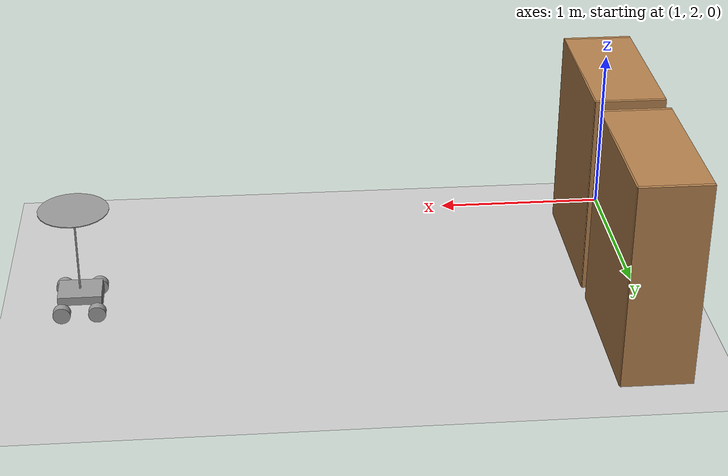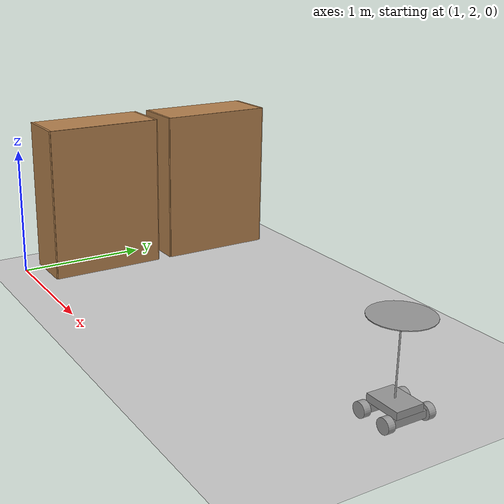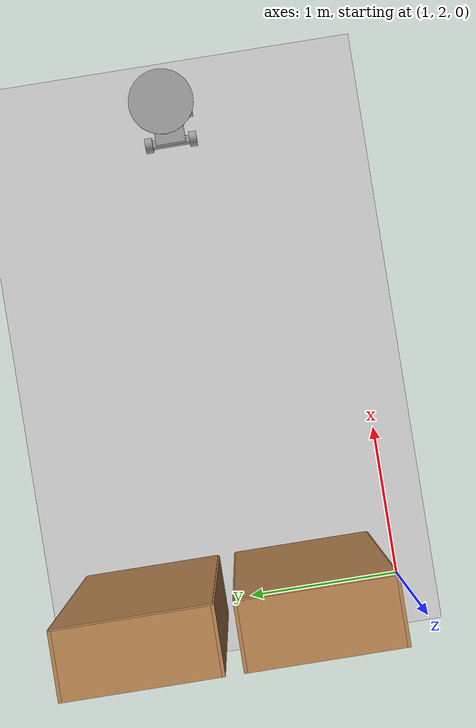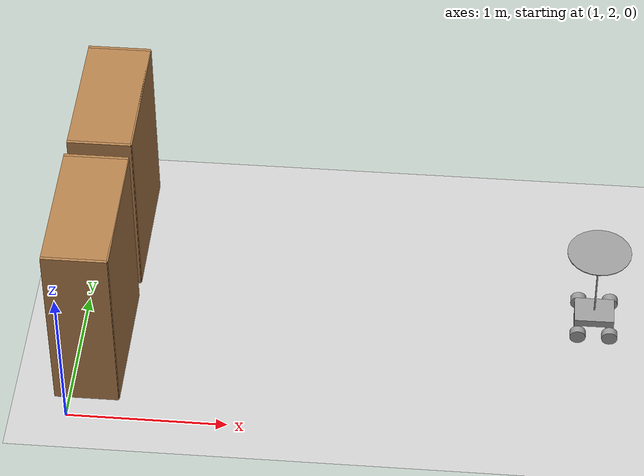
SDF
<sdf version="1.6">
 <world name="default">
  <model name="ground_plane">
   <static>1</static>
   <link name="link">
    <collision name="collision">
     <geometry><plane><normal>0 0 1</normal><size>100 100</size></plane></geometry>
     <surface><friction><ode><mu>100</mu><mu2>50</mu2></ode></friction></surface>
    </collision>
    <visual name="visual">
     <cast_shadows>0</cast_shadows>
     <geometry><plane><normal>0 0 1</normal><size>100 100</size></plane></geometry>
     <material>
      <script><uri>file://media/materials/scripts/gazebo.material</uri><name>Gazebo/Grey</name></script>
     </material>
    </visual>
   </link>
  </model>
  <model name="bookshelf">
   <static>1</static>
   <link name="link">
    <inertial><mass>1</mass></inertial>
    <collision name="back">
     <pose>0 0.005 0.6 0 -0 0</pose>
     <geometry><box><size>0.9 0.01 1.2</size></box></geometry>
    </collision>
    <visual name="visual1">
     <pose>0 0.005 0.6 0 -0 0</pose>
     <geometry><box><size>0.9 0.01 1.2</size></box></geometry>
     <material>
      <script><uri>file://media/materials/scripts/gazebo.material</uri><name>Gazebo/Wood</name></script>
     </material>
    </visual>
    <collision name="left_side">
     <pose>0.45 -0.195 0.6 0 -0 0</pose>
     <geometry><box><size>0.02 0.4 1.2</size></box></geometry>
    </collision>
    <visual name="visual2">
     <pose>0.45 -0.195 0.6 0 -0 0</pose>
     <geometry><box><size>0.02 0.4 1.2</size></box></geometry>
     <material>
      <script><uri>file://media/materials/scripts/gazebo.material</uri><name>Gazebo/Wood</name></script>
     </material>
    </visual>
    <collision name="right_side">
     <pose>-0.45 -0.195 0.6 0 -0 0</pose>
     <geometry><box><size>0.02 0.4 1.2</size></box></geometry>
    </collision>
    <visual name="visual3">
     <pose>-0.45 -0.195 0.6 0 -0 0</pose>
     <geometry><box><size>0.02 0.4 1.2</size></box></geometry>
     <material>
      <script><uri>file://media/materials/scripts/gazebo.material</uri><name>Gazebo/Wood</name></script>
     </material>
    </visual>
    <collision name="bottom">
     <pose>0 -0.195 0.03 0 -0 0</pose>
     <geometry><box><size>0.88 0.4 0.06</size></box></geometry>
    </collision>
    <visual name="visual4">
     <pose>0 -0.195 0.03 0 -0 0</pose>
     <geometry><box><size>0.88 0.4 0.06</size></box></geometry>
     <material>
      <script><uri>file://media/materials/scripts/gazebo.material</uri><name>Gazebo/Wood</name></script>
     </material>
    </visual>
    <collision name="top">
     <pose>0 -0.195 1.19 0 -0 0</pose>
     <geometry><box><size>0.88 0.4 0.02</size></box></geometry>
    </collision>
    <visual name="visual5">
     <pose>0 -0.195 1.19 0 -0 0</pose>
     <geometry><box><size>0.88 0.4 0.02</size></box></geometry>
     <material>
      <script><uri>file://media/materials/scripts/gazebo.material</uri><name>Gazebo/Wood</name></script>
     </material>
    </visual>
    <collision name="low_shelf">
     <pose>0 -0.195 0.43 0 -0 0</pose>
     <geometry><box><size>0.88 0.4 0.02</size></box></geometry>
    </collision>
    <visual name="visual6">
     <pose>0 -0.195 0.43 0 -0 0</pose>
     <geometry><box><size>0.88 0.4 0.02</size></box></geometry>
     <material>
      <script><uri>file://media/materials/scripts/gazebo.material</uri><name>Gazebo/Wood</name></script>
     </material>
    </visual>
    <collision name="high_shelf">
     <pose>0 -0.195 0.8 0 -0 0</pose>
     <geometry><box><size>0.88 0.4 0.02</size></box></geometry>
    </collision>
    <visual name="visual7">
     <pose>0 -0.195 0.8 0 -0 0</pose>
     <geometry><box><size>0.88 0.4 0.02</size></box></geometry>
     <material>
      <script><uri>file://media/materials/scripts/gazebo.material</uri><name>Gazebo/Wood</name></script>
     </material>
    </visual>
   </link>
   <pose>1.3 3.63049 0 0 0 -1.57119</pose>
  </model>
  <model name="bookshelf_clone">
   <static>1</static>
   <link name="link">
    <inertial><mass>1</mass></inertial>
    <collision name="back">
     <pose>0 0.005 0.6 0 -0 0</pose>
     <geometry><box><size>0.9 0.01 1.2</size></box></geometry>
    </collision>
    <visual name="visual1">
     <pose>0 0.005 0.6 0 -0 0</pose>
     <geometry><box><size>0.9 0.01 1.2</size></box></geometry>
     <material>
      <script><uri>file://media/materials/scripts/gazebo.material</uri><name>Gazebo/Wood</name></script>
     </material>
    </visual>
    <collision name="left_side">
     <pose>0.45 -0.195 0.6 0 -0 0</pose>
     <geometry><box><size>0.02 0.4 1.2</size></box></geometry>
    </collision>
    <visual name="visual2">
     <pose>0.45 -0.195 0.6 0 -0 0</pose>
     <geometry><box><size>0.02 0.4 1.2</size></box></geometry>
     <material>
      <script><uri>file://media/materials/scripts/gazebo.material</uri><name>Gazebo/Wood</name></script>
     </material>
    </visual>
    <collision name="right_side">
     <pose>-0.45 -0.195 0.6 0 -0 0</pose>
     <geometry><box><size>0.02 0.4 1.2</size></box></geometry>
    </collision>
    <visual name="visual3">
     <pose>-0.45 -0.195 0.6 0 -0 0</pose>
     <geometry><box><size>0.02 0.4 1.2</size></box></geometry>
     <material>
      <script><uri>file://media/materials/scripts/gazebo.material</uri><name>Gazebo/Wood</name></script>
     </material>
    </visual>
    <collision name="bottom">
     <pose>0 -0.195 0.03 0 -0 0</pose>
     <geometry><box><size>0.88 0.4 0.06</size></box></geometry>
    </collision>
    <visual name="visual4">
     <pose>0 -0.195 0.03 0 -0 0</pose>
     <geometry><box><size>0.88 0.4 0.06</size></box></geometry>
     <material>
      <script><uri>file://media/materials/scripts/gazebo.material</uri><name>Gazebo/Wood</name></script>
     </material>
    </visual>
    <collision name="top">
     <pose>0 -0.195 1.19 0 -0 0</pose>
     <geometry><box><size>0.88 0.4 0.02</size></box></geometry>
    </collision>
    <visual name="visual5">
     <pose>0 -0.195 1.19 0 -0 0</pose>
     <geometry><box><size>0.88 0.4 0.02</size></box></geometry>
     <material>
      <script><uri>file://media/materials/scripts/gazebo.material</uri><name>Gazebo/Wood</name></script>
     </material>
    </visual>
    <collision name="low_shelf">
     <pose>0 -0.195 0.43 0 -0 0</pose>
     <geometry><box><size>0.88 0.4 0.02</size></box></geometry>
    </collision>
    <visual name="visual6">
     <pose>0 -0.195 0.43 0 -0 0</pose>
     <geometry><box><size>0.88 0.4 0.02</size></box></geometry>
     <material>
      <script><uri>file://media/materials/scripts/gazebo.material</uri><name>Gazebo/Wood</name></script>
     </material>
    </visual>
    <collision name="high_shelf">
     <pose>0 -0.195 0.8 0 -0 0</pose>
     <geometry><box><size>0.88 0.4 0.02</size></box></geometry>
    </collision>
    <visual name="visual7">
     <pose>0 -0.195 0.8 0 -0 0</pose>
     <geometry><box><size>0.88 0.4 0.02</size></box></geometry>
     <material>
      <script><uri>file://media/materials/scripts/gazebo.material</uri><name>Gazebo/Wood</name></script>
     </material>
    </visual>
   </link>
   <pose>1.30004 2.60838 0 0 0 -1.57119</pose>
  </model>
  <model name="carry-o-matic_0">
   <link name="link_0">
    <pose>0.1 -0 -0.049667 0 -0 0</pose>
    <inertial>
     <mass>1</mass>
     <inertia>
      <ixx>0.166667</ixx>
      <ixy>0</ixy>
      <ixz>0</ixz>
      <iyy>0.166667</iyy>
      <iyz>0</iyz>
      <izz>0.166667</izz>
     </inertia>
    </inertial>
    <visual name="visual">
     <geometry><box><size>0.05 0.25 0.05</size></box></geometry>
     <material>
      <lighting>1</lighting>
      <script><uri>file://media/materials/scripts/gazebo.material</uri><name>Gazebo/Grey</name></script>
      <ambient>0.3 0.3 0.3 1</ambient>
      <diffuse>0.7 0.7 0.7 1</diffuse>
      <specular>0.01 0.01 0.01 1</specular>
      <emissive>0 0 0 1</emissive>
      <shader type="vertex"><normal_map>__default__</normal_map></shader>
     </material>
    </visual>
    <collision name="collision">
     <geometry><box><size>0.05 0.25 0.05</size></box></geometry>
     <surface>
      <friction>
       <ode><mu>1</mu><mu2>1</mu2><fdir1>0 0 0</fdir1><slip1>0</slip1><slip2>0</slip2></ode>
       <torsional>
        <coefficient>1</coefficient>
        <patch_radius>0</patch_radius>
        <surface_radius>0</surface_radius>
        <use_patch_radius>1</use_patch_radius>
        <ode><slip>0</slip></ode>
       </torsional>
      </friction>
      <bounce><restitution_coefficient>0</restitution_coefficient><threshold>1e+06</threshold></bounce>
      <contact>
       <collide_without_contact>0</collide_without_contact>
       <collide_without_contact_bitmask>1</collide_without_contact_bitmask>
       <collide_bitmask>1</collide_bitmask>
       <ode>
        <soft_cfm>0</soft_cfm>
        <soft_erp>0.2</soft_erp>
        <kp>1e+13</kp>
        <kd>1</kd>
        <max_vel>0.01</max_vel>
        <min_depth>0</min_depth>
       </ode>
       <bullet>
        <split_impulse>1</split_impulse>
        <split_impulse_penetration_threshold>-0.01</split_impulse_penetration_threshold>
        <soft_cfm>0</soft_cfm>
        <soft_erp>0.2</soft_erp>
        <kp>1e+13</kp>
        <kd>1</kd>
       </bullet>
      </contact>
     </surface>
    </collision>
   </link>
   <link name="link_0_clone">
    <pose>-0.1 -0 -0.049667 0 -0 0</pose>
    <inertial>
     <mass>1</mass>
     <inertia>
      <ixx>0.166667</ixx>
      <ixy>0</ixy>
      <ixz>0</ixz>
      <iyy>0.166667</iyy>
      <iyz>0</iyz>
      <izz>0.166667</izz>
     </inertia>
    </inertial>
    <visual name="visual">
     <geometry><box><size>0.05 0.25 0.05</size></box></geometry>
     <material>
      <lighting>1</lighting>
      <script><uri>file://media/materials/scripts/gazebo.material</uri><name>Gazebo/Grey</name></script>
      <ambient>0.3 0.3 0.3 1</ambient>
      <diffuse>0.7 0.7 0.7 1</diffuse>
      <specular>0.01 0.01 0.01 1</specular>
      <emissive>0 0 0 1</emissive>
      <shader type="vertex"><normal_map>__default__</normal_map></shader>
     </material>
    </visual>
    <collision name="collision">
     <geometry><box><size>0.05 0.25 0.05</size></box></geometry>
     <surface>
      <friction>
       <ode><mu>1</mu><mu2>1</mu2><fdir1>0 0 0</fdir1><slip1>0</slip1><slip2>0</slip2></ode>
       <torsional>
        <coefficient>1</coefficient>
        <patch_radius>0</patch_radius>
        <surface_radius>0</surface_radius>
        <use_patch_radius>1</use_patch_radius>
        <ode><slip>0</slip></ode>
       </torsional>
      </friction>
      <bounce><restitution_coefficient>0</restitution_coefficient><threshold>1e+06</threshold></bounce>
      <contact>
       <collide_without_contact>0</collide_without_contact>
       <collide_without_contact_bitmask>1</collide_without_contact_bitmask>
       <collide_bitmask>1</collide_bitmask>
       <ode>
        <soft_cfm>0</soft_cfm>
        <soft_erp>0.2</soft_erp>
        <kp>1e+13</kp>
        <kd>1</kd>
        <max_vel>0.01</max_vel>
        <min_depth>0</min_depth>
       </ode>
       <bullet>
        <split_impulse>1</split_impulse>
        <split_impulse_penetration_threshold>-0.01</split_impulse_penetration_threshold>
        <soft_cfm>0</soft_cfm>
        <soft_erp>0.2</soft_erp>
        <kp>1e+13</kp>
        <kd>1</kd>
       </bullet>
      </contact>
     </surface>
    </collision>
   </link>
   <link name="link_1">
    <pose>0.1 -0.150013 -0.049667 1.5707 -0 0</pose>
    <inertial>
     <mass>1</mass>
     <inertia><ixx>0.145833</ixx><ixy>0</ixy><ixz>0</ixz><iyy>0.145833</iyy><iyz>0</iyz><izz>0.125</izz></inertia>
    </inertial>
    <visual name="visual">
     <geometry><cylinder><radius>0.05</radius><length>0.05</length></cylinder></geometry>
     <material>
      <lighting>1</lighting>
      <script><uri>file://media/materials/scripts/gazebo.material</uri><name>Gazebo/Grey</name></script>
      <ambient>0.3 0.3 0.3 1</ambient>
      <diffuse>0.7 0.7 0.7 1</diffuse>
      <specular>0.01 0.01 0.01 1</specular>
      <emissive>0 0 0 1</emissive>
      <shader type="vertex"><normal_map>__default__</normal_map></shader>
     </material>
    </visual>
    <collision name="collision">
     <geometry><cylinder><radius>0.05</radius><length>0.05</length></cylinder></geometry>
     <surface>
      <friction>
       <ode><mu>1</mu><mu2>1</mu2><fdir1>0 0 0</fdir1><slip1>0</slip1><slip2>0</slip2></ode>
       <torsional>
        <coefficient>1</coefficient>
        <patch_radius>0</patch_radius>
        <surface_radius>0</surface_radius>
        <use_patch_radius>1</use_patch_radius>
        <ode><slip>0</slip></ode>
       </torsional>
      </friction>
      <bounce><restitution_coefficient>0</restitution_coefficient><threshold>1e+06</threshold></bounce>
      <contact>
       <collide_without_contact>0</collide_without_contact>
       <collide_without_contact_bitmask>1</collide_without_contact_bitmask>
       <collide_bitmask>1</collide_bitmask>
       <ode>
        <soft_cfm>0</soft_cfm>
        <soft_erp>0.2</soft_erp>
        <kp>1e+13</kp>
        <kd>1</kd>
        <max_vel>0.01</max_vel>
        <min_depth>0</min_depth>
       </ode>
       <bullet>
        <split_impulse>1</split_impulse>
        <split_impulse_penetration_threshold>-0.01</split_impulse_penetration_threshold>
        <soft_cfm>0</soft_cfm>
        <soft_erp>0.2</soft_erp>
        <kp>1e+13</kp>
        <kd>1</kd>
       </bullet>
      </contact>
     </surface>
    </collision>
   </link>
   <link name="link_1_clone">
    <pose>0.1 0.15 -0.049667 1.5707 -0 0</pose>
    <inertial>
     <mass>1</mass>
     <inertia><ixx>0.145833</ixx><ixy>0</ixy><ixz>0</ixz><iyy>0.145833</iyy><iyz>0</iyz><izz>0.125</izz></inertia>
    </inertial>
    <visual name="visual">
     <geometry><cylinder><radius>0.05</radius><length>0.05</length></cylinder></geometry>
     <material>
      <lighting>1</lighting>
      <script><uri>file://media/materials/scripts/gazebo.material</uri><name>Gazebo/Grey</name></script>
      <ambient>0.3 0.3 0.3 1</ambient>
      <diffuse>0.7 0.7 0.7 1</diffuse>
      <specular>0.01 0.01 0.01 1</specular>
      <emissive>0 0 0 1</emissive>
      <shader type="vertex"><normal_map>__default__</normal_map></shader>
     </material>
    </visual>
    <collision name="collision">
     <geometry><cylinder><radius>0.05</radius><length>0.05</length></cylinder></geometry>
     <surface>
      <friction>
       <ode><mu>1</mu><mu2>1</mu2><fdir1>0 0 0</fdir1><slip1>0</slip1><slip2>0</slip2></ode>
       <torsional>
        <coefficient>1</coefficient>
        <patch_radius>0</patch_radius>
        <surface_radius>0</surface_radius>
        <use_patch_radius>1</use_patch_radius>
        <ode><slip>0</slip></ode>
       </torsional>
      </friction>
      <bounce><restitution_coefficient>0</restitution_coefficient><threshold>1e+06</threshold></bounce>
      <contact>
       <collide_without_contact>0</collide_without_contact>
       <collide_without_contact_bitmask>1</collide_without_contact_bitmask>
       <collide_bitmask>1</collide_bitmask>
       <ode>
        <soft_cfm>0</soft_cfm>
        <soft_erp>0.2</soft_erp>
        <kp>1e+13</kp>
        <kd>1</kd>
        <max_vel>0.01</max_vel>
        <min_depth>0</min_depth>
       </ode>
       <bullet>
        <split_impulse>1</split_impulse>
        <split_impulse_penetration_threshold>-0.01</split_impulse_penetration_threshold>
        <soft_cfm>0</soft_cfm>
        <soft_erp>0.2</soft_erp>
        <kp>1e+13</kp>
        <kd>1</kd>
       </bullet>
      </contact>
     </surface>
    </collision>
   </link>
   <link name="link_1_clone_0">
    <pose>-0.1 -0.150005 -0.049667 1.5707 -0 0</pose>
    <inertial>
     <mass>1</mass>
     <inertia><ixx>0.145833</ixx><ixy>0</ixy><ixz>0</ixz><iyy>0.145833</iyy><iyz>0</iyz><izz>0.125</izz></inertia>
    </inertial>
    <visual name="visual">
     <geometry><cylinder><radius>0.05</radius><length>0.05</length></cylinder></geometry>
     <material>
      <lighting>1</lighting>
      <script><uri>file://media/materials/scripts/gazebo.material</uri><name>Gazebo/Grey</name></script>
      <ambient>0.3 0.3 0.3 1</ambient>
      <diffuse>0.7 0.7 0.7 1</diffuse>
      <specular>0.01 0.01 0.01 1</specular>
      <emissive>0 0 0 1</emissive>
      <shader type="vertex"><normal_map>__default__</normal_map></shader>
     </material>
    </visual>
    <collision name="collision">
     <geometry><cylinder><radius>0.05</radius><length>0.05</length></cylinder></geometry>
     <surface>
      <friction>
       <ode><mu>1</mu><mu2>1</mu2><fdir1>0 0 0</fdir1><slip1>0</slip1><slip2>0</slip2></ode>
       <torsional>
        <coefficient>1</coefficient>
        <patch_radius>0</patch_radius>
        <surface_radius>0</surface_radius>
        <use_patch_radius>1</use_patch_radius>
        <ode><slip>0</slip></ode>
       </torsional>
      </friction>
      <bounce><restitution_coefficient>0</restitution_coefficient><threshold>1e+06</threshold></bounce>
      <contact>
       <collide_without_contact>0</collide_without_contact>
       <collide_without_contact_bitmask>1</collide_without_contact_bitmask>
       <collide_bitmask>1</collide_bitmask>
       <ode>
        <soft_cfm>0</soft_cfm>
        <soft_erp>0.2</soft_erp>
        <kp>1e+13</kp>
        <kd>1</kd>
        <max_vel>0.01</max_vel>
        <min_depth>0</min_depth>
       </ode>
       <bullet>
        <split_impulse>1</split_impulse>
        <split_impulse_penetration_threshold>-0.01</split_impulse_penetration_threshold>
        <soft_cfm>0</soft_cfm>
        <soft_erp>0.2</soft_erp>
        <kp>1e+13</kp>
        <kd>1</kd>
       </bullet>
      </contact>
     </surface>
    </collision>
   </link>
   <link name="link_1_clone_1">
    <pose>-0.1 0.150005 -0.049667 1.5707 -0 0</pose>
    <inertial>
     <mass>1</mass>
     <inertia><ixx>0.145833</ixx><ixy>0</ixy><ixz>0</ixz><iyy>0.145833</iyy><iyz>0</iyz><izz>0.125</izz></inertia>
    </inertial>
    <visual name="visual">
     <geometry><cylinder><radius>0.05</radius><length>0.05</length></cylinder></geometry>
     <material>
      <lighting>1</lighting>
      <script><uri>file://media/materials/scripts/gazebo.material</uri><name>Gazebo/Grey</name></script>
      <ambient>0.3 0.3 0.3 1</ambient>
      <diffuse>0.7 0.7 0.7 1</diffuse>
      <specular>0.01 0.01 0.01 1</specular>
      <emissive>0 0 0 1</emissive>
      <shader type="vertex"><normal_map>__default__</normal_map></shader>
     </material>
    </visual>
    <collision name="collision">
     <geometry><cylinder><radius>0.05</radius><length>0.05</length></cylinder></geometry>
     <surface>
      <friction>
       <ode><mu>1</mu><mu2>1</mu2><fdir1>0 0 0</fdir1><slip1>0</slip1><slip2>0</slip2></ode>
       <torsional>
        <coefficient>1</coefficient>
        <patch_radius>0</patch_radius>
        <surface_radius>0</surface_radius>
        <use_patch_radius>1</use_patch_radius>
        <ode><slip>0</slip></ode>
       </torsional>
      </friction>
      <bounce><restitution_coefficient>0</restitution_coefficient><threshold>1e+06</threshold></bounce>
      <contact>
       <collide_without_contact>0</collide_without_contact>
       <collide_without_contact_bitmask>1</collide_without_contact_bitmask>
       <collide_bitmask>1</collide_bitmask>
       <ode>
        <soft_cfm>0</soft_cfm>
        <soft_erp>0.2</soft_erp>
        <kp>1e+13</kp>
        <kd>1</kd>
        <max_vel>0.01</max_vel>
        <min_depth>0</min_depth>
       </ode>
       <bullet>
        <split_impulse>1</split_impulse>
        <split_impulse_penetration_threshold>-0.01</split_impulse_penetration_threshold>
        <soft_cfm>0</soft_cfm>
        <soft_erp>0.2</soft_erp>
        <kp>1e+13</kp>
        <kd>1</kd>
       </bullet>
      </contact>
     </surface>
    </collision>
   </link>
   <link name="link_2">
    <pose>0 -0 0.000333 0 -0 0</pose>
    <inertial>
     <mass>1</mass>
     <inertia>
      <ixx>0.166667</ixx>
      <ixy>0</ixy>
      <ixz>0</ixz>
      <iyy>0.166667</iyy>
      <iyz>0</iyz>
      <izz>0.166667</izz>
     </inertia>
    </inertial>
    <visual name="visual">
     <geometry><box><size>0.25 0.2 0.05</size></box></geometry>
     <material>
      <lighting>1</lighting>
      <script><uri>file://media/materials/scripts/gazebo.material</uri><name>Gazebo/Grey</name></script>
      <ambient>0.3 0.3 0.3 1</ambient>
      <diffuse>0.7 0.7 0.7 1</diffuse>
      <specular>0.01 0.01 0.01 1</specular>
      <emissive>0 0 0 1</emissive>
      <shader type="vertex"><normal_map>__default__</normal_map></shader>
     </material>
    </visual>
    <collision name="collision">
     <geometry><box><size>0.25 0.2 0.05</size></box></geometry>
     <surface>
      <friction>
       <ode><mu>1</mu><mu2>1</mu2><fdir1>0 0 0</fdir1><slip1>0</slip1><slip2>0</slip2></ode>
       <torsional>
        <coefficient>1</coefficient>
        <patch_radius>0</patch_radius>
        <surface_radius>0</surface_radius>
        <use_patch_radius>1</use_patch_radius>
        <ode><slip>0</slip></ode>
       </torsional>
      </friction>
      <bounce><restitution_coefficient>0</restitution_coefficient><threshold>1e+06</threshold></bounce>
      <contact>
       <collide_without_contact>0</collide_without_contact>
       <collide_without_contact_bitmask>1</collide_without_contact_bitmask>
       <collide_bitmask>1</collide_bitmask>
       <ode>
        <soft_cfm>0</soft_cfm>
        <soft_erp>0.2</soft_erp>
        <kp>1e+13</kp>
        <kd>1</kd>
        <max_vel>0.01</max_vel>
        <min_depth>0</min_depth>
       </ode>
       <bullet>
        <split_impulse>1</split_impulse>
        <split_impulse_penetration_threshold>-0.01</split_impulse_penetration_threshold>
        <soft_cfm>0</soft_cfm>
        <soft_erp>0.2</soft_erp>
        <kp>1e+13</kp>
        <kd>1</kd>
       </bullet>
      </contact>
     </surface>
    </collision>
   </link>
   <link name="link_3">
    <pose>0 -2e-06 0.277476 0 -0 0</pose>
    <inertial>
     <mass>1</mass>
     <inertia><ixx>0.145833</ixx><ixy>0</ixy><ixz>0</ixz><iyy>0.145833</iyy><iyz>0</iyz><izz>0.125</izz></inertia>
    </inertial>
    <visual name="visual">
     <geometry><cylinder><radius>0.005</radius><length>0.5</length></cylinder></geometry>
     <material>
      <lighting>1</lighting>
      <script><uri>file://media/materials/scripts/gazebo.material</uri><name>Gazebo/Grey</name></script>
      <ambient>0.3 0.3 0.3 1</ambient>
      <diffuse>0.7 0.7 0.7 1</diffuse>
      <specular>0.01 0.01 0.01 1</specular>
      <emissive>0 0 0 1</emissive>
      <shader type="vertex"><normal_map>__default__</normal_map></shader>
     </material>
    </visual>
    <collision name="collision">
     <geometry><cylinder><radius>0.005</radius><length>0.5</length></cylinder></geometry>
     <surface>
      <friction>
       <ode><mu>1</mu><mu2>1</mu2><fdir1>0 0 0</fdir1><slip1>0</slip1><slip2>0</slip2></ode>
       <torsional>
        <coefficient>1</coefficient>
        <patch_radius>0</patch_radius>
        <surface_radius>0</surface_radius>
        <use_patch_radius>1</use_patch_radius>
        <ode><slip>0</slip></ode>
       </torsional>
      </friction>
      <bounce><restitution_coefficient>0</restitution_coefficient><threshold>1e+06</threshold></bounce>
      <contact>
       <collide_without_contact>0</collide_without_contact>
       <collide_without_contact_bitmask>1</collide_without_contact_bitmask>
       <collide_bitmask>1</collide_bitmask>
       <ode>
        <soft_cfm>0</soft_cfm>
        <soft_erp>0.2</soft_erp>
        <kp>1e+13</kp>
        <kd>1</kd>
        <max_vel>0.01</max_vel>
        <min_depth>0</min_depth>
       </ode>
       <bullet>
        <split_impulse>1</split_impulse>
        <split_impulse_penetration_threshold>-0.01</split_impulse_penetration_threshold>
        <soft_cfm>0</soft_cfm>
        <soft_erp>0.2</soft_erp>
        <kp>1e+13</kp>
        <kd>1</kd>
       </bullet>
      </contact>
     </surface>
    </collision>
   </link>
   <link name="link_4">
    <pose>0 -2e-06 0.534476 0 -0 0</pose>
    <inertial>
     <mass>1</mass>
     <inertia><ixx>0.145833</ixx><ixy>0</ixy><ixz>0</ixz><iyy>0.145833</iyy><iyz>0</iyz><izz>0.125</izz></inertia>
    </inertial>
    <visual name="visual">
     <geometry><cylinder><radius>0.2</radius><length>0.005</length></cylinder></geometry>
     <material>
      <lighting>1</lighting>
      <script><uri>file://media/materials/scripts/gazebo.material</uri><name>Gazebo/Grey</name></script>
      <ambient>0.3 0.3 0.3 1</ambient>
      <diffuse>0.7 0.7 0.7 1</diffuse>
      <specular>0.01 0.01 0.01 1</specular>
      <emissive>0 0 0 1</emissive>
      <shader type="vertex"><normal_map>__default__</normal_map></shader>
     </material>
    </visual>
    <collision name="collision">
     <geometry><cylinder><radius>0.2</radius><length>0.005</length></cylinder></geometry>
     <surface>
      <friction>
       <ode><mu>1</mu><mu2>1</mu2><fdir1>0 0 0</fdir1><slip1>0</slip1><slip2>0</slip2></ode>
       <torsional>
        <coefficient>1</coefficient>
        <patch_radius>0</patch_radius>
        <surface_radius>0</surface_radius>
        <use_patch_radius>1</use_patch_radius>
        <ode><slip>0</slip></ode>
       </torsional>
      </friction>
      <bounce><restitution_coefficient>0</restitution_coefficient><threshold>1e+06</threshold></bounce>
      <contact>
       <collide_without_contact>0</collide_without_contact>
       <collide_without_contact_bitmask>1</collide_without_contact_bitmask>
       <collide_bitmask>1</collide_bitmask>
       <ode>
        <soft_cfm>0</soft_cfm>
        <soft_erp>0.2</soft_erp>
        <kp>1e+13</kp>
        <kd>1</kd>
        <max_vel>0.01</max_vel>
        <min_depth>0</min_depth>
       </ode>
       <bullet>
        <split_impulse>1</split_impulse>
        <split_impulse_penetration_threshold>-0.01</split_impulse_penetration_threshold>
        <soft_cfm>0</soft_cfm>
        <soft_erp>0.2</soft_erp>
        <kp>1e+13</kp>
        <kd>1</kd>
       </bullet>
      </contact>
     </surface>
    </collision>
   </link>
   <joint name="link_0_JOINT_0" type="revolute">
    <parent>link_0</parent>
    <child>link_1</child>
    <axis>
     <xyz>0 0 1</xyz>
     <use_parent_model_frame>0</use_parent_model_frame>
     <limit>
      <lower>-1.79769e+308</lower>
      <upper>1.79769e+308</upper>
      <effort>-1</effort>
      <velocity>-1</velocity>
     </limit>
     <dynamics>
      <spring_reference>0</spring_reference>
      <spring_stiffness>0</spring_stiffness>
      <damping>0</damping>
     </dynamics>
    </axis>
    <physics>
     <ode><limit><cfm>0</cfm><erp>0.2</erp></limit><suspension><cfm>0</cfm><erp>0.2</erp></suspension></ode>
    </physics>
   </joint>
   <joint name="link_0_JOINT_1" type="revolute">
    <parent>link_0</parent>
    <child>link_1_clone</child>
    <axis>
     <xyz>0 0 1</xyz>
     <use_parent_model_frame>0</use_parent_model_frame>
     <limit>
      <lower>-1.79769e+308</lower>
      <upper>1.79769e+308</upper>
      <effort>-1</effort>
      <velocity>-1</velocity>
     </limit>
     <dynamics>
      <spring_reference>0</spring_reference>
      <spring_stiffness>0</spring_stiffness>
      <damping>0</damping>
     </dynamics>
    </axis>
    <physics>
     <ode><limit><cfm>0</cfm><erp>0.2</erp></limit><suspension><cfm>0</cfm><erp>0.2</erp></suspension></ode>
    </physics>
   </joint>
   <joint name="link_0_clone_JOINT_2" type="revolute">
    <parent>link_0_clone</parent>
    <child>link_1_clone_0</child>
    <axis>
     <xyz>0 0 1</xyz>
     <use_parent_model_frame>0</use_parent_model_frame>
     <limit>
      <lower>-1.79769e+308</lower>
      <upper>1.79769e+308</upper>
      <effort>-1</effort>
      <velocity>-1</velocity>
     </limit>
     <dynamics>
      <spring_reference>0</spring_reference>
      <spring_stiffness>0</spring_stiffness>
      <damping>0</damping>
     </dynamics>
    </axis>
    <physics>
     <ode><limit><cfm>0</cfm><erp>0.2</erp></limit><suspension><cfm>0</cfm><erp>0.2</erp></suspension></ode>
    </physics>
   </joint>
   <joint name="link_0_clone_JOINT_3" type="revolute">
    <parent>link_0_clone</parent>
    <child>link_1_clone_1</child>
    <axis>
     <xyz>0 0 1</xyz>
     <use_parent_model_frame>0</use_parent_model_frame>
     <limit>
      <lower>-1.79769e+308</lower>
      <upper>1.79769e+308</upper>
      <effort>-1</effort>
      <velocity>-1</velocity>
     </limit>
     <dynamics>
      <spring_reference>0</spring_reference>
      <spring_stiffness>0</spring_stiffness>
      <damping>0</damping>
     </dynamics>
    </axis>
    <physics>
     <ode><limit><cfm>0</cfm><erp>0.2</erp></limit><suspension><cfm>0</cfm><erp>0.2</erp></suspension></ode>
    </physics>
   </joint>
   <joint name="link_2_JOINT_4" type="fixed">
    <parent>link_2</parent>
    <child>link_0_clone</child>
    <physics>
     <ode><limit><cfm>0</cfm><erp>0.2</erp></limit><suspension><cfm>0</cfm><erp>0.2</erp></suspension></ode>
    </physics>
   </joint>
   <joint name="link_2_JOINT_5" type="fixed">
    <parent>link_2</parent>
    <child>link_0</child>
    <physics>
     <ode><limit><cfm>0</cfm><erp>0.2</erp></limit><suspension><cfm>0</cfm><erp>0.2</erp></suspension></ode>
    </physics>
   </joint>
   <joint name="link_2_JOINT_6" type="fixed">
    <parent>link_2</parent>
    <child>link_3</child>
    <physics>
     <ode><limit><cfm>0</cfm><erp>0.2</erp></limit><suspension><cfm>0</cfm><erp>0.2</erp></suspension></ode>
    </physics>
   </joint>
   <joint name="link_3_JOINT_7" type="fixed">
    <parent>link_3</parent>
    <child>link_4</child>
    <physics>
     <ode><limit><cfm>0</cfm><erp>0.2</erp></limit><suspension><cfm>0</cfm><erp>0.2</erp></suspension></ode>
    </physics>
   </joint>
   <static>0</static>
   <pose>4.22309 3.048 0.099669 1e-06 -1e-05 0.006044</pose>
  </model>
 </world>
</sdf>
